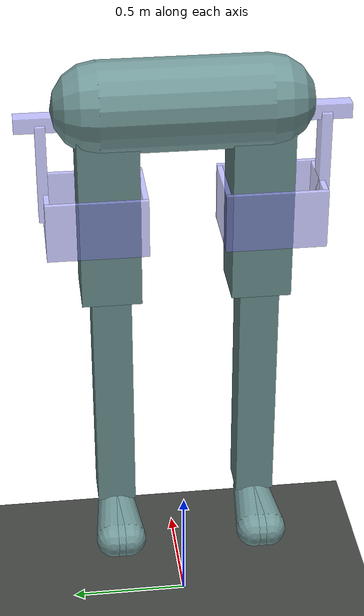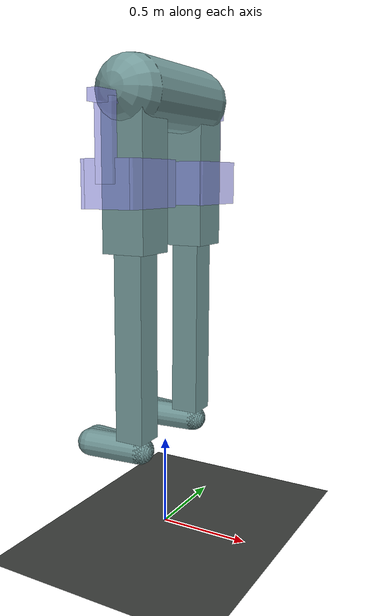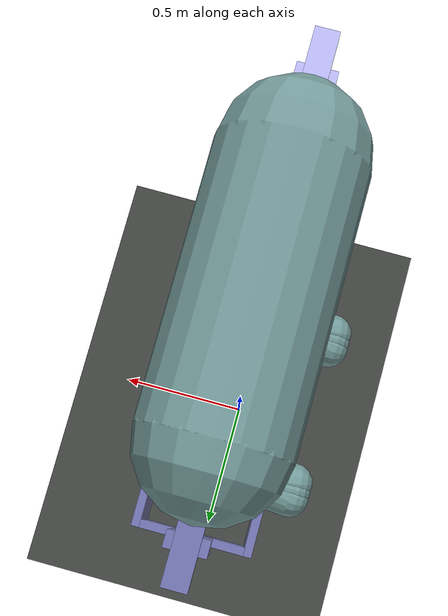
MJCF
<mujoco model="inverted pendulum">
    <compiler angle="radian" />
    <option timestep="0.01" iterations="20">
        <flag sensornoise="enable" />
    </option>
    <size njmax="500" nconmax="100" />
    <default class="main">
        <geom rgba="0.45 0.6 0.6 1" />
        <site size="0.02 0.005 0.005" />
    </default>
    <worldbody>
        <geom name="ground" size="5 5 5" type="plane" rgba="0.25 0.26 0.25 1" />
        <light pos="0.9 0.3 2.5" dir="-0.336581 -0.112194 -0.934947" directional="true" cutoff="4" exponent="20" diffuse="1 1 1" specular="0 0 0" />
        <body name="beam" pos="0 0 1.5">
            <inertial pos="0 0 0.9" quat="0.707107 0.707107 0 0" mass="5" diaginertia="0.3345 0.3345 0.081" />
            <geom name="butt" size="0.18 0.33" pos="0 0 0.9" quat="0.707107 0.707107 0 0" type="capsule" />
            <body name="left" pos="0 -0.3 0.5">
                <inertial pos="0 0 0" mass="6" diaginertia="0.3488 0.3488 0.0576" />
                <joint name="thigh_L" pos="0 0 0.4" axis="0 1 0" damping="1" />
                <geom name="rod1" size="0.12 0.12 0.4" type="box" />
                <body name="knee_L" pos="0 0 -0.4">
                    <inertial pos="0 0 0" mass="2.14466" diaginertia="0.00549033 0.00549033 0.00549033" />
                    <geom name="ballgeom1" size="0.08" />
                </body>
                <body name="additional_rod1" pos="0 0 -0.9">
                    <inertial pos="0 0 0" mass="3.66" diaginertia="0.312808 0.312808 0.015616" />
                    <geom name="additional_rod1_geom" size="0.08 0.08 0.5" type="box" />
                    <body name="left_foot" pos="0.02 0 -0.56">
                        <inertial pos="-0.15 0 0" quat="0 0.707107 0 0.707107" mass="19.9333" diaginertia="0.265865 0.2615 0.0604273" />
                        <geom name="left_foot_cap1" size="0.075 0.150748" pos="-0.15 -0.015 0" quat="0.707107 -0.0703598 0.703598 0" type="capsule" />
                        <geom name="left_foot_cap2" size="0.075 0.15" pos="-0.15 0 0" quat="0.707107 0 0.707107 0" type="capsule" />
                        <geom name="left_foot_cap3" size="0.075 0.150748" pos="-0.15 0.015 0" quat="0.707107 0.0703598 0.703598 0" type="capsule" />
                    </body>
                </body>
            </body>
            <body name="assist_motor_left" pos="0 -0.55 0.85">
                <inertial pos="0 0 -0.123077" mass="2.6" diaginertia="0.0497954 0.0478821 0.00518" />
                <joint name="real_motor_left" pos="0 -0.23 0" axis="0 1 0" damping="1" />
                <geom name="left" size="0.03 0.1 0.03" type="box" rgba="0.6 0.6 1 0.6" />
                <geom name="connect_left" size="0.05 0.02 0.2" pos="0 0 -0.2" type="box" rgba="0.6 0.6 1 0.6" />
                <body name="wearable_L" pos="0 0.15 -0.4">
                    <inertial pos="0 0.05 0" quat="0.5 0.5 -0.5 0.5" mass="6.336" diaginertia="0.230842 0.171802 0.119866" />
                    <joint name="box_L" pos="0 0 0" axis="0 -1 0" limited="true" range="-0.05 0.05" damping="1" />
                    <geom name="box1_geom1" size="0.01 0.2 0.12" pos="-0.14 0.05 0" type="box" rgba="0.6 0.6 1 0.6" />
                    <geom name="box1_geom2" size="0.01 0.2 0.12" pos="0.14 0.05 0" type="box" rgba="0.6 0.6 1 0.6" />
                    <geom name="box1_geom3" size="0.13 0.01 0.12" pos="0 -0.14 0" type="box" rgba="0.6 0.6 1 0.6" />
                    <geom name="box1_geom4" size="0.13 0.01 0.12" pos="0 0.24 0" type="box" rgba="0.6 0.6 1 0.6" />
                </body>
            </body>
            <body name="right" pos="0 0.3 0.5">
                <inertial pos="0 0 0" mass="6" diaginertia="0.3488 0.3488 0.0576" />
                <joint name="thigh_R" pos="0 0 0.4" axis="0 1 0" damping="1" />
                <geom name="rod2" size="0.12 0.12 0.4" type="box" />
                <body name="knee_R" pos="0 0 -0.4">
                    <inertial pos="0 0 0" mass="2.14466" diaginertia="0.00549033 0.00549033 0.00549033" />
                    <geom name="ballgeom2" size="0.08" />
                </body>
                <body name="additional_rod2" pos="0 0 -0.9">
                    <inertial pos="0 0 0" mass="3.66" diaginertia="0.312808 0.312808 0.015616" />
                    <geom name="additional_rod2_geom" size="0.08 0.08 0.5" type="box" />
                    <body name="right_foot" pos="0.02 0 -0.56">
                        <inertial pos="-0.15 0 0" quat="0 0.707107 0 0.707107" mass="19.9333" diaginertia="0.265865 0.2615 0.0604273" />
                        <geom name="right_foot_cap1" size="0.075 0.150748" pos="-0.15 -0.015 0" quat="0.707107 -0.0703598 0.703598 0" type="capsule" />
                        <geom name="right_foot_cap2" size="0.075 0.15" pos="-0.15 0 0" quat="0.707107 0 0.707107 0" type="capsule" />
                        <geom name="right_foot_cap3" size="0.075 0.150748" pos="-0.15 0.015 0" quat="0.707107 0.0703598 0.703598 0" type="capsule" />
                    </body>
                </body>
            </body>
            <body name="assist_motor_right" pos="0 0.55 0.85">
                <inertial pos="0 0 -0.123077" mass="2.6" diaginertia="0.0497954 0.0478821 0.00518" />
                <joint name="real_motor_right" pos="0 0.23 0" axis="0 1 0" damping="1" />
                <geom name="right" size="0.03 0.1 0.03" type="box" rgba="0.6 0.6 1 0.6" />
                <geom name="connect_right" size="0.05 0.02 0.2" pos="0 0 -0.2" type="box" rgba="0.6 0.6 1 0.6" />
                <body name="wearable_R" pos="0 -0.15 -0.4">
                    <inertial pos="0 -0.05 0" quat="0.5 0.5 -0.5 0.5" mass="6.336" diaginertia="0.230842 0.171802 0.119866" />
                    <joint name="box_R" pos="0 0 0" axis="0 1 0" limited="true" range="-0.05 0.05" damping="1" />
                    <geom name="box2_geom1" size="0.01 0.2 0.12" pos="-0.14 -0.05 0" type="box" rgba="0.6 0.6 1 0.6" />
                    <geom name="box2_geom2" size="0.01 0.2 0.12" pos="0.14 -0.05 0" type="box" rgba="0.6 0.6 1 0.6" />
                    <geom name="box2_geom3" size="0.13 0.01 0.12" pos="0 0.14 0" type="box" rgba="0.6 0.6 1 0.6" />
                    <geom name="box2_geom4" size="0.13 0.01 0.12" pos="0 -0.24 0" type="box" rgba="0.6 0.6 1 0.6" />
                </body>
            </body>
        </body>
    </worldbody>
    <contact>
        <exclude body1="beam" body2="left" />
        <exclude body1="beam" body2="right" />
        <exclude body1="left" body2="assist_motor_left" />
        <exclude body1="right" body2="assist_motor_right" />
    </contact>
    <actuator>
        <general name="motor1" joint="thigh_L" />
        <general name="motor2" joint="thigh_R" />
        <general name="left_motor" joint="real_motor_left" />
        <general name="right_motor" joint="real_motor_right" />
    </actuator>
</mujoco>
